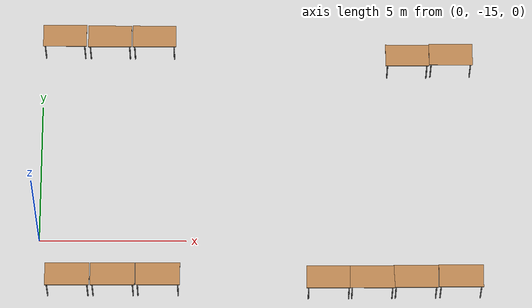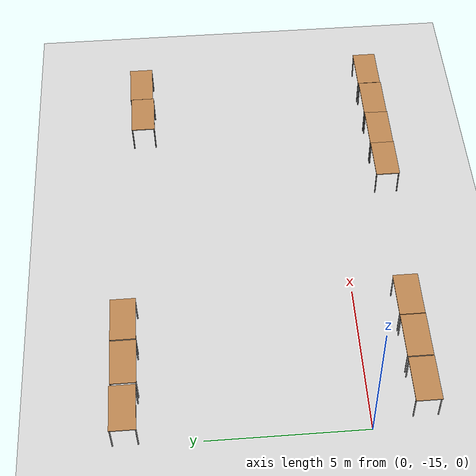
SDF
<sdf version="1.6">
 <world name="default">
  <model name="ground_plane">
   <static>1</static>
   <link name="link">
    <collision name="collision">
     <geometry><plane><normal>0 0 1</normal><size>100 100</size></plane></geometry>
     <surface><friction><ode><mu>100</mu><mu2>50</mu2></ode></friction></surface>
    </collision>
    <visual name="visual">
     <cast_shadows>0</cast_shadows>
     <geometry><plane><normal>0 0 1</normal><size>100 100</size></plane></geometry>
     <material>
      <script><uri>file://media/materials/scripts/gazebo.material</uri><name>Gazebo/Grey</name></script>
     </material>
    </visual>
   </link>
  </model>
  <model name="table">
   <static>1</static>
   <link name="link">
    <collision name="surface">
     <pose>0 0 1 0 -0 0</pose>
     <geometry><box><size>1.5 0.8 0.03</size></box></geometry>
     <surface><friction><ode><mu>0.6</mu><mu2>0.6</mu2></ode></friction></surface>
    </collision>
    <visual name="visual1">
     <pose>0 0 1 0 -0 0</pose>
     <geometry><box><size>1.5 0.8 0.03</size></box></geometry>
     <material>
      <script><uri>file://media/materials/scripts/gazebo.material</uri><name>Gazebo/Wood</name></script>
     </material>
    </visual>
    <collision name="front_left_leg">
     <pose>0.68 0.38 0.5 0 -0 0</pose>
     <geometry><cylinder><radius>0.02</radius><length>1</length></cylinder></geometry>
    </collision>
    <visual name="front_left_leg">
     <pose>0.68 0.38 0.5 0 -0 0</pose>
     <geometry><cylinder><radius>0.02</radius><length>1</length></cylinder></geometry>
     <material>
      <script><uri>file://media/materials/scripts/gazebo.material</uri><name>Gazebo/Grey</name></script>
     </material>
    </visual>
    <collision name="front_right_leg">
     <pose>0.68 -0.38 0.5 0 -0 0</pose>
     <geometry><cylinder><radius>0.02</radius><length>1</length></cylinder></geometry>
    </collision>
    <visual name="front_right_leg">
     <pose>0.68 -0.38 0.5 0 -0 0</pose>
     <geometry><cylinder><radius>0.02</radius><length>1</length></cylinder></geometry>
     <material>
      <script><uri>file://media/materials/scripts/gazebo.material</uri><name>Gazebo/Grey</name></script>
     </material>
    </visual>
    <collision name="back_right_leg">
     <pose>-0.68 -0.38 0.5 0 -0 0</pose>
     <geometry><cylinder><radius>0.02</radius><length>1</length></cylinder></geometry>
    </collision>
    <visual name="back_right_leg">
     <pose>-0.68 -0.38 0.5 0 -0 0</pose>
     <geometry><cylinder><radius>0.02</radius><length>1</length></cylinder></geometry>
     <material>
      <script><uri>file://media/materials/scripts/gazebo.material</uri><name>Gazebo/Grey</name></script>
     </material>
    </visual>
    <collision name="back_left_leg">
     <pose>-0.68 0.38 0.5 0 -0 0</pose>
     <geometry><cylinder><radius>0.02</radius><length>1</length></cylinder></geometry>
    </collision>
    <visual name="back_left_leg">
     <pose>-0.68 0.38 0.5 0 -0 0</pose>
     <geometry><cylinder><radius>0.02</radius><length>1</length></cylinder></geometry>
     <material>
      <script><uri>file://media/materials/scripts/gazebo.material</uri><name>Gazebo/Grey</name></script>
     </material>
    </visual>
   </link>
   <pose>14.0819 -8.38922 0 0 -0 0</pose>
  </model>
  <model name="table_clone">
   <static>1</static>
   <link name="link">
    <collision name="surface">
     <pose>0 0 1 0 -0 0</pose>
     <geometry><box><size>1.5 0.8 0.03</size></box></geometry>
     <surface><friction><ode><mu>0.6</mu><mu2>0.6</mu2></ode></friction></surface>
    </collision>
    <visual name="visual1">
     <pose>0 0 1 0 -0 0</pose>
     <geometry><box><size>1.5 0.8 0.03</size></box></geometry>
     <material>
      <script><uri>file://media/materials/scripts/gazebo.material</uri><name>Gazebo/Wood</name></script>
     </material>
    </visual>
    <collision name="front_left_leg">
     <pose>0.68 0.38 0.5 0 -0 0</pose>
     <geometry><cylinder><radius>0.02</radius><length>1</length></cylinder></geometry>
    </collision>
    <visual name="front_left_leg">
     <pose>0.68 0.38 0.5 0 -0 0</pose>
     <geometry><cylinder><radius>0.02</radius><length>1</length></cylinder></geometry>
     <material>
      <script><uri>file://media/materials/scripts/gazebo.material</uri><name>Gazebo/Grey</name></script>
     </material>
    </visual>
    <collision name="front_right_leg">
     <pose>0.68 -0.38 0.5 0 -0 0</pose>
     <geometry><cylinder><radius>0.02</radius><length>1</length></cylinder></geometry>
    </collision>
    <visual name="front_right_leg">
     <pose>0.68 -0.38 0.5 0 -0 0</pose>
     <geometry><cylinder><radius>0.02</radius><length>1</length></cylinder></geometry>
     <material>
      <script><uri>file://media/materials/scripts/gazebo.material</uri><name>Gazebo/Grey</name></script>
     </material>
    </visual>
    <collision name="back_right_leg">
     <pose>-0.68 -0.38 0.5 0 -0 0</pose>
     <geometry><cylinder><radius>0.02</radius><length>1</length></cylinder></geometry>
    </collision>
    <visual name="back_right_leg">
     <pose>-0.68 -0.38 0.5 0 -0 0</pose>
     <geometry><cylinder><radius>0.02</radius><length>1</length></cylinder></geometry>
     <material>
      <script><uri>file://media/materials/scripts/gazebo.material</uri><name>Gazebo/Grey</name></script>
     </material>
    </visual>
    <collision name="back_left_leg">
     <pose>-0.68 0.38 0.5 0 -0 0</pose>
     <geometry><cylinder><radius>0.02</radius><length>1</length></cylinder></geometry>
    </collision>
    <visual name="back_left_leg">
     <pose>-0.68 0.38 0.5 0 -0 0</pose>
     <geometry><cylinder><radius>0.02</radius><length>1</length></cylinder></geometry>
     <material>
      <script><uri>file://media/materials/scripts/gazebo.material</uri><name>Gazebo/Grey</name></script>
     </material>
    </visual>
   </link>
   <pose>12.5791 -8.42531 0 0 -0 0</pose>
  </model>
  <model name="table_clone_0">
   <static>1</static>
   <link name="link">
    <collision name="surface">
     <pose>0 0 1 0 -0 0</pose>
     <geometry><box><size>1.5 0.8 0.03</size></box></geometry>
     <surface><friction><ode><mu>0.6</mu><mu2>0.6</mu2></ode></friction></surface>
    </collision>
    <visual name="visual1">
     <pose>0 0 1 0 -0 0</pose>
     <geometry><box><size>1.5 0.8 0.03</size></box></geometry>
     <material>
      <script><uri>file://media/materials/scripts/gazebo.material</uri><name>Gazebo/Wood</name></script>
     </material>
    </visual>
    <collision name="front_left_leg">
     <pose>0.68 0.38 0.5 0 -0 0</pose>
     <geometry><cylinder><radius>0.02</radius><length>1</length></cylinder></geometry>
    </collision>
    <visual name="front_left_leg">
     <pose>0.68 0.38 0.5 0 -0 0</pose>
     <geometry><cylinder><radius>0.02</radius><length>1</length></cylinder></geometry>
     <material>
      <script><uri>file://media/materials/scripts/gazebo.material</uri><name>Gazebo/Grey</name></script>
     </material>
    </visual>
    <collision name="front_right_leg">
     <pose>0.68 -0.38 0.5 0 -0 0</pose>
     <geometry><cylinder><radius>0.02</radius><length>1</length></cylinder></geometry>
    </collision>
    <visual name="front_right_leg">
     <pose>0.68 -0.38 0.5 0 -0 0</pose>
     <geometry><cylinder><radius>0.02</radius><length>1</length></cylinder></geometry>
     <material>
      <script><uri>file://media/materials/scripts/gazebo.material</uri><name>Gazebo/Grey</name></script>
     </material>
    </visual>
    <collision name="back_right_leg">
     <pose>-0.68 -0.38 0.5 0 -0 0</pose>
     <geometry><cylinder><radius>0.02</radius><length>1</length></cylinder></geometry>
    </collision>
    <visual name="back_right_leg">
     <pose>-0.68 -0.38 0.5 0 -0 0</pose>
     <geometry><cylinder><radius>0.02</radius><length>1</length></cylinder></geometry>
     <material>
      <script><uri>file://media/materials/scripts/gazebo.material</uri><name>Gazebo/Grey</name></script>
     </material>
    </visual>
    <collision name="back_left_leg">
     <pose>-0.68 0.38 0.5 0 -0 0</pose>
     <geometry><cylinder><radius>0.02</radius><length>1</length></cylinder></geometry>
    </collision>
    <visual name="back_left_leg">
     <pose>-0.68 0.38 0.5 0 -0 0</pose>
     <geometry><cylinder><radius>0.02</radius><length>1</length></cylinder></geometry>
     <material>
      <script><uri>file://media/materials/scripts/gazebo.material</uri><name>Gazebo/Grey</name></script>
     </material>
    </visual>
   </link>
   <pose>14.2864 -16.6612 0 0 -0 0</pose>
  </model>
  <model name="table_clone_1">
   <static>1</static>
   <link name="link">
    <collision name="surface">
     <pose>0 0 1 0 -0 0</pose>
     <geometry><box><size>1.5 0.8 0.03</size></box></geometry>
     <surface><friction><ode><mu>0.6</mu><mu2>0.6</mu2></ode></friction></surface>
    </collision>
    <visual name="visual1">
     <pose>0 0 1 0 -0 0</pose>
     <geometry><box><size>1.5 0.8 0.03</size></box></geometry>
     <material>
      <script><uri>file://media/materials/scripts/gazebo.material</uri><name>Gazebo/Wood</name></script>
     </material>
    </visual>
    <collision name="front_left_leg">
     <pose>0.68 0.38 0.5 0 -0 0</pose>
     <geometry><cylinder><radius>0.02</radius><length>1</length></cylinder></geometry>
    </collision>
    <visual name="front_left_leg">
     <pose>0.68 0.38 0.5 0 -0 0</pose>
     <geometry><cylinder><radius>0.02</radius><length>1</length></cylinder></geometry>
     <material>
      <script><uri>file://media/materials/scripts/gazebo.material</uri><name>Gazebo/Grey</name></script>
     </material>
    </visual>
    <collision name="front_right_leg">
     <pose>0.68 -0.38 0.5 0 -0 0</pose>
     <geometry><cylinder><radius>0.02</radius><length>1</length></cylinder></geometry>
    </collision>
    <visual name="front_right_leg">
     <pose>0.68 -0.38 0.5 0 -0 0</pose>
     <geometry><cylinder><radius>0.02</radius><length>1</length></cylinder></geometry>
     <material>
      <script><uri>file://media/materials/scripts/gazebo.material</uri><name>Gazebo/Grey</name></script>
     </material>
    </visual>
    <collision name="back_right_leg">
     <pose>-0.68 -0.38 0.5 0 -0 0</pose>
     <geometry><cylinder><radius>0.02</radius><length>1</length></cylinder></geometry>
    </collision>
    <visual name="back_right_leg">
     <pose>-0.68 -0.38 0.5 0 -0 0</pose>
     <geometry><cylinder><radius>0.02</radius><length>1</length></cylinder></geometry>
     <material>
      <script><uri>file://media/materials/scripts/gazebo.material</uri><name>Gazebo/Grey</name></script>
     </material>
    </visual>
    <collision name="back_left_leg">
     <pose>-0.68 0.38 0.5 0 -0 0</pose>
     <geometry><cylinder><radius>0.02</radius><length>1</length></cylinder></geometry>
    </collision>
    <visual name="back_left_leg">
     <pose>-0.68 0.38 0.5 0 -0 0</pose>
     <geometry><cylinder><radius>0.02</radius><length>1</length></cylinder></geometry>
     <material>
      <script><uri>file://media/materials/scripts/gazebo.material</uri><name>Gazebo/Grey</name></script>
     </material>
    </visual>
   </link>
   <pose>12.7739 -16.685 0 0 -0 0</pose>
  </model>
  <model name="table_clone_2">
   <static>1</static>
   <link name="link">
    <collision name="surface">
     <pose>0 0 1 0 -0 0</pose>
     <geometry><box><size>1.5 0.8 0.03</size></box></geometry>
     <surface><friction><ode><mu>0.6</mu><mu2>0.6</mu2></ode></friction></surface>
    </collision>
    <visual name="visual1">
     <pose>0 0 1 0 -0 0</pose>
     <geometry><box><size>1.5 0.8 0.03</size></box></geometry>
     <material>
      <script><uri>file://media/materials/scripts/gazebo.material</uri><name>Gazebo/Wood</name></script>
     </material>
    </visual>
    <collision name="front_left_leg">
     <pose>0.68 0.38 0.5 0 -0 0</pose>
     <geometry><cylinder><radius>0.02</radius><length>1</length></cylinder></geometry>
    </collision>
    <visual name="front_left_leg">
     <pose>0.68 0.38 0.5 0 -0 0</pose>
     <geometry><cylinder><radius>0.02</radius><length>1</length></cylinder></geometry>
     <material>
      <script><uri>file://media/materials/scripts/gazebo.material</uri><name>Gazebo/Grey</name></script>
     </material>
    </visual>
    <collision name="front_right_leg">
     <pose>0.68 -0.38 0.5 0 -0 0</pose>
     <geometry><cylinder><radius>0.02</radius><length>1</length></cylinder></geometry>
    </collision>
    <visual name="front_right_leg">
     <pose>0.68 -0.38 0.5 0 -0 0</pose>
     <geometry><cylinder><radius>0.02</radius><length>1</length></cylinder></geometry>
     <material>
      <script><uri>file://media/materials/scripts/gazebo.material</uri><name>Gazebo/Grey</name></script>
     </material>
    </visual>
    <collision name="back_right_leg">
     <pose>-0.68 -0.38 0.5 0 -0 0</pose>
     <geometry><cylinder><radius>0.02</radius><length>1</length></cylinder></geometry>
    </collision>
    <visual name="back_right_leg">
     <pose>-0.68 -0.38 0.5 0 -0 0</pose>
     <geometry><cylinder><radius>0.02</radius><length>1</length></cylinder></geometry>
     <material>
      <script><uri>file://media/materials/scripts/gazebo.material</uri><name>Gazebo/Grey</name></script>
     </material>
    </visual>
    <collision name="back_left_leg">
     <pose>-0.68 0.38 0.5 0 -0 0</pose>
     <geometry><cylinder><radius>0.02</radius><length>1</length></cylinder></geometry>
    </collision>
    <visual name="back_left_leg">
     <pose>-0.68 0.38 0.5 0 -0 0</pose>
     <geometry><cylinder><radius>0.02</radius><length>1</length></cylinder></geometry>
     <material>
      <script><uri>file://media/materials/scripts/gazebo.material</uri><name>Gazebo/Grey</name></script>
     </material>
    </visual>
   </link>
   <pose>11.2999 -16.7016 0 0 -0 0</pose>
  </model>
  <model name="table_clone_3">
   <static>1</static>
   <link name="link">
    <collision name="surface">
     <pose>0 0 1 0 -0 0</pose>
     <geometry><box><size>1.5 0.8 0.03</size></box></geometry>
     <surface><friction><ode><mu>0.6</mu><mu2>0.6</mu2></ode></friction></surface>
    </collision>
    <visual name="visual1">
     <pose>0 0 1 0 -0 0</pose>
     <geometry><box><size>1.5 0.8 0.03</size></box></geometry>
     <material>
      <script><uri>file://media/materials/scripts/gazebo.material</uri><name>Gazebo/Wood</name></script>
     </material>
    </visual>
    <collision name="front_left_leg">
     <pose>0.68 0.38 0.5 0 -0 0</pose>
     <geometry><cylinder><radius>0.02</radius><length>1</length></cylinder></geometry>
    </collision>
    <visual name="front_left_leg">
     <pose>0.68 0.38 0.5 0 -0 0</pose>
     <geometry><cylinder><radius>0.02</radius><length>1</length></cylinder></geometry>
     <material>
      <script><uri>file://media/materials/scripts/gazebo.material</uri><name>Gazebo/Grey</name></script>
     </material>
    </visual>
    <collision name="front_right_leg">
     <pose>0.68 -0.38 0.5 0 -0 0</pose>
     <geometry><cylinder><radius>0.02</radius><length>1</length></cylinder></geometry>
    </collision>
    <visual name="front_right_leg">
     <pose>0.68 -0.38 0.5 0 -0 0</pose>
     <geometry><cylinder><radius>0.02</radius><length>1</length></cylinder></geometry>
     <material>
      <script><uri>file://media/materials/scripts/gazebo.material</uri><name>Gazebo/Grey</name></script>
     </material>
    </visual>
    <collision name="back_right_leg">
     <pose>-0.68 -0.38 0.5 0 -0 0</pose>
     <geometry><cylinder><radius>0.02</radius><length>1</length></cylinder></geometry>
    </collision>
    <visual name="back_right_leg">
     <pose>-0.68 -0.38 0.5 0 -0 0</pose>
     <geometry><cylinder><radius>0.02</radius><length>1</length></cylinder></geometry>
     <material>
      <script><uri>file://media/materials/scripts/gazebo.material</uri><name>Gazebo/Grey</name></script>
     </material>
    </visual>
    <collision name="back_left_leg">
     <pose>-0.68 0.38 0.5 0 -0 0</pose>
     <geometry><cylinder><radius>0.02</radius><length>1</length></cylinder></geometry>
    </collision>
    <visual name="back_left_leg">
     <pose>-0.68 0.38 0.5 0 -0 0</pose>
     <geometry><cylinder><radius>0.02</radius><length>1</length></cylinder></geometry>
     <material>
      <script><uri>file://media/materials/scripts/gazebo.material</uri><name>Gazebo/Grey</name></script>
     </material>
    </visual>
   </link>
   <pose>9.83498 -16.7133 0 0 -0 0</pose>
  </model>
  <model name="table_clone_4">
   <static>1</static>
   <link name="link">
    <collision name="surface">
     <pose>0 0 1 0 -0 0</pose>
     <geometry><box><size>1.5 0.8 0.03</size></box></geometry>
     <surface><friction><ode><mu>0.6</mu><mu2>0.6</mu2></ode></friction></surface>
    </collision>
    <visual name="visual1">
     <pose>0 0 1 0 -0 0</pose>
     <geometry><box><size>1.5 0.8 0.03</size></box></geometry>
     <material>
      <script><uri>file://media/materials/scripts/gazebo.material</uri><name>Gazebo/Wood</name></script>
     </material>
    </visual>
    <collision name="front_left_leg">
     <pose>0.68 0.38 0.5 0 -0 0</pose>
     <geometry><cylinder><radius>0.02</radius><length>1</length></cylinder></geometry>
    </collision>
    <visual name="front_left_leg">
     <pose>0.68 0.38 0.5 0 -0 0</pose>
     <geometry><cylinder><radius>0.02</radius><length>1</length></cylinder></geometry>
     <material>
      <script><uri>file://media/materials/scripts/gazebo.material</uri><name>Gazebo/Grey</name></script>
     </material>
    </visual>
    <collision name="front_right_leg">
     <pose>0.68 -0.38 0.5 0 -0 0</pose>
     <geometry><cylinder><radius>0.02</radius><length>1</length></cylinder></geometry>
    </collision>
    <visual name="front_right_leg">
     <pose>0.68 -0.38 0.5 0 -0 0</pose>
     <geometry><cylinder><radius>0.02</radius><length>1</length></cylinder></geometry>
     <material>
      <script><uri>file://media/materials/scripts/gazebo.material</uri><name>Gazebo/Grey</name></script>
     </material>
    </visual>
    <collision name="back_right_leg">
     <pose>-0.68 -0.38 0.5 0 -0 0</pose>
     <geometry><cylinder><radius>0.02</radius><length>1</length></cylinder></geometry>
    </collision>
    <visual name="back_right_leg">
     <pose>-0.68 -0.38 0.5 0 -0 0</pose>
     <geometry><cylinder><radius>0.02</radius><length>1</length></cylinder></geometry>
     <material>
      <script><uri>file://media/materials/scripts/gazebo.material</uri><name>Gazebo/Grey</name></script>
     </material>
    </visual>
    <collision name="back_left_leg">
     <pose>-0.68 0.38 0.5 0 -0 0</pose>
     <geometry><cylinder><radius>0.02</radius><length>1</length></cylinder></geometry>
    </collision>
    <visual name="back_left_leg">
     <pose>-0.68 0.38 0.5 0 -0 0</pose>
     <geometry><cylinder><radius>0.02</radius><length>1</length></cylinder></geometry>
     <material>
      <script><uri>file://media/materials/scripts/gazebo.material</uri><name>Gazebo/Grey</name></script>
     </material>
    </visual>
   </link>
   <pose>4.07121 -16.6152 0 0 -0 0</pose>
  </model>
  <model name="table_clone_5">
   <static>1</static>
   <link name="link">
    <collision name="surface">
     <pose>0 0 1 0 -0 0</pose>
     <geometry><box><size>1.5 0.8 0.03</size></box></geometry>
     <surface><friction><ode><mu>0.6</mu><mu2>0.6</mu2></ode></friction></surface>
    </collision>
    <visual name="visual1">
     <pose>0 0 1 0 -0 0</pose>
     <geometry><box><size>1.5 0.8 0.03</size></box></geometry>
     <material>
      <script><uri>file://media/materials/scripts/gazebo.material</uri><name>Gazebo/Wood</name></script>
     </material>
    </visual>
    <collision name="front_left_leg">
     <pose>0.68 0.38 0.5 0 -0 0</pose>
     <geometry><cylinder><radius>0.02</radius><length>1</length></cylinder></geometry>
    </collision>
    <visual name="front_left_leg">
     <pose>0.68 0.38 0.5 0 -0 0</pose>
     <geometry><cylinder><radius>0.02</radius><length>1</length></cylinder></geometry>
     <material>
      <script><uri>file://media/materials/scripts/gazebo.material</uri><name>Gazebo/Grey</name></script>
     </material>
    </visual>
    <collision name="front_right_leg">
     <pose>0.68 -0.38 0.5 0 -0 0</pose>
     <geometry><cylinder><radius>0.02</radius><length>1</length></cylinder></geometry>
    </collision>
    <visual name="front_right_leg">
     <pose>0.68 -0.38 0.5 0 -0 0</pose>
     <geometry><cylinder><radius>0.02</radius><length>1</length></cylinder></geometry>
     <material>
      <script><uri>file://media/materials/scripts/gazebo.material</uri><name>Gazebo/Grey</name></script>
     </material>
    </visual>
    <collision name="back_right_leg">
     <pose>-0.68 -0.38 0.5 0 -0 0</pose>
     <geometry><cylinder><radius>0.02</radius><length>1</length></cylinder></geometry>
    </collision>
    <visual name="back_right_leg">
     <pose>-0.68 -0.38 0.5 0 -0 0</pose>
     <geometry><cylinder><radius>0.02</radius><length>1</length></cylinder></geometry>
     <material>
      <script><uri>file://media/materials/scripts/gazebo.material</uri><name>Gazebo/Grey</name></script>
     </material>
    </visual>
    <collision name="back_left_leg">
     <pose>-0.68 0.38 0.5 0 -0 0</pose>
     <geometry><cylinder><radius>0.02</radius><length>1</length></cylinder></geometry>
    </collision>
    <visual name="back_left_leg">
     <pose>-0.68 0.38 0.5 0 -0 0</pose>
     <geometry><cylinder><radius>0.02</radius><length>1</length></cylinder></geometry>
     <material>
      <script><uri>file://media/materials/scripts/gazebo.material</uri><name>Gazebo/Grey</name></script>
     </material>
    </visual>
   </link>
   <pose>2.55084 -16.6222 0 0 -0 0</pose>
  </model>
  <model name="table_clone_6">
   <static>1</static>
   <link name="link">
    <collision name="surface">
     <pose>0 0 1 0 -0 0</pose>
     <geometry><box><size>1.5 0.8 0.03</size></box></geometry>
     <surface><friction><ode><mu>0.6</mu><mu2>0.6</mu2></ode></friction></surface>
    </collision>
    <visual name="visual1">
     <pose>0 0 1 0 -0 0</pose>
     <geometry><box><size>1.5 0.8 0.03</size></box></geometry>
     <material>
      <script><uri>file://media/materials/scripts/gazebo.material</uri><name>Gazebo/Wood</name></script>
     </material>
    </visual>
    <collision name="front_left_leg">
     <pose>0.68 0.38 0.5 0 -0 0</pose>
     <geometry><cylinder><radius>0.02</radius><length>1</length></cylinder></geometry>
    </collision>
    <visual name="front_left_leg">
     <pose>0.68 0.38 0.5 0 -0 0</pose>
     <geometry><cylinder><radius>0.02</radius><length>1</length></cylinder></geometry>
     <material>
      <script><uri>file://media/materials/scripts/gazebo.material</uri><name>Gazebo/Grey</name></script>
     </material>
    </visual>
    <collision name="front_right_leg">
     <pose>0.68 -0.38 0.5 0 -0 0</pose>
     <geometry><cylinder><radius>0.02</radius><length>1</length></cylinder></geometry>
    </collision>
    <visual name="front_right_leg">
     <pose>0.68 -0.38 0.5 0 -0 0</pose>
     <geometry><cylinder><radius>0.02</radius><length>1</length></cylinder></geometry>
     <material>
      <script><uri>file://media/materials/scripts/gazebo.material</uri><name>Gazebo/Grey</name></script>
     </material>
    </visual>
    <collision name="back_right_leg">
     <pose>-0.68 -0.38 0.5 0 -0 0</pose>
     <geometry><cylinder><radius>0.02</radius><length>1</length></cylinder></geometry>
    </collision>
    <visual name="back_right_leg">
     <pose>-0.68 -0.38 0.5 0 -0 0</pose>
     <geometry><cylinder><radius>0.02</radius><length>1</length></cylinder></geometry>
     <material>
      <script><uri>file://media/materials/scripts/gazebo.material</uri><name>Gazebo/Grey</name></script>
     </material>
    </visual>
    <collision name="back_left_leg">
     <pose>-0.68 0.38 0.5 0 -0 0</pose>
     <geometry><cylinder><radius>0.02</radius><length>1</length></cylinder></geometry>
    </collision>
    <visual name="back_left_leg">
     <pose>-0.68 0.38 0.5 0 -0 0</pose>
     <geometry><cylinder><radius>0.02</radius><length>1</length></cylinder></geometry>
     <material>
      <script><uri>file://media/materials/scripts/gazebo.material</uri><name>Gazebo/Grey</name></script>
     </material>
    </visual>
   </link>
   <pose>1.01882 -16.6291 0 0 -0 0</pose>
  </model>
  <model name="table_clone_7">
   <static>1</static>
   <link name="link">
    <collision name="surface">
     <pose>0 0 1 0 -0 0</pose>
     <geometry><box><size>1.5 0.8 0.03</size></box></geometry>
     <surface><friction><ode><mu>0.6</mu><mu2>0.6</mu2></ode></friction></surface>
    </collision>
    <visual name="visual1">
     <pose>0 0 1 0 -0 0</pose>
     <geometry><box><size>1.5 0.8 0.03</size></box></geometry>
     <material>
      <script><uri>file://media/materials/scripts/gazebo.material</uri><name>Gazebo/Wood</name></script>
     </material>
    </visual>
    <collision name="front_left_leg">
     <pose>0.68 0.38 0.5 0 -0 0</pose>
     <geometry><cylinder><radius>0.02</radius><length>1</length></cylinder></geometry>
    </collision>
    <visual name="front_left_leg">
     <pose>0.68 0.38 0.5 0 -0 0</pose>
     <geometry><cylinder><radius>0.02</radius><length>1</length></cylinder></geometry>
     <material>
      <script><uri>file://media/materials/scripts/gazebo.material</uri><name>Gazebo/Grey</name></script>
     </material>
    </visual>
    <collision name="front_right_leg">
     <pose>0.68 -0.38 0.5 0 -0 0</pose>
     <geometry><cylinder><radius>0.02</radius><length>1</length></cylinder></geometry>
    </collision>
    <visual name="front_right_leg">
     <pose>0.68 -0.38 0.5 0 -0 0</pose>
     <geometry><cylinder><radius>0.02</radius><length>1</length></cylinder></geometry>
     <material>
      <script><uri>file://media/materials/scripts/gazebo.material</uri><name>Gazebo/Grey</name></script>
     </material>
    </visual>
    <collision name="back_right_leg">
     <pose>-0.68 -0.38 0.5 0 -0 0</pose>
     <geometry><cylinder><radius>0.02</radius><length>1</length></cylinder></geometry>
    </collision>
    <visual name="back_right_leg">
     <pose>-0.68 -0.38 0.5 0 -0 0</pose>
     <geometry><cylinder><radius>0.02</radius><length>1</length></cylinder></geometry>
     <material>
      <script><uri>file://media/materials/scripts/gazebo.material</uri><name>Gazebo/Grey</name></script>
     </material>
    </visual>
    <collision name="back_left_leg">
     <pose>-0.68 0.38 0.5 0 -0 0</pose>
     <geometry><cylinder><radius>0.02</radius><length>1</length></cylinder></geometry>
    </collision>
    <visual name="back_left_leg">
     <pose>-0.68 0.38 0.5 0 -0 0</pose>
     <geometry><cylinder><radius>0.02</radius><length>1</length></cylinder></geometry>
     <material>
      <script><uri>file://media/materials/scripts/gazebo.material</uri><name>Gazebo/Grey</name></script>
     </material>
    </visual>
   </link>
   <pose>3.83492 -7.71608 0 0 -0 0</pose>
  </model>
  <model name="table_clone_8">
   <static>1</static>
   <link name="link">
    <collision name="surface">
     <pose>0 0 1 0 -0 0</pose>
     <geometry><box><size>1.5 0.8 0.03</size></box></geometry>
     <surface><friction><ode><mu>0.6</mu><mu2>0.6</mu2></ode></friction></surface>
    </collision>
    <visual name="visual1">
     <pose>0 0 1 0 -0 0</pose>
     <geometry><box><size>1.5 0.8 0.03</size></box></geometry>
     <material>
      <script><uri>file://media/materials/scripts/gazebo.material</uri><name>Gazebo/Wood</name></script>
     </material>
    </visual>
    <collision name="front_left_leg">
     <pose>0.68 0.38 0.5 0 -0 0</pose>
     <geometry><cylinder><radius>0.02</radius><length>1</length></cylinder></geometry>
    </collision>
    <visual name="front_left_leg">
     <pose>0.68 0.38 0.5 0 -0 0</pose>
     <geometry><cylinder><radius>0.02</radius><length>1</length></cylinder></geometry>
     <material>
      <script><uri>file://media/materials/scripts/gazebo.material</uri><name>Gazebo/Grey</name></script>
     </material>
    </visual>
    <collision name="front_right_leg">
     <pose>0.68 -0.38 0.5 0 -0 0</pose>
     <geometry><cylinder><radius>0.02</radius><length>1</length></cylinder></geometry>
    </collision>
    <visual name="front_right_leg">
     <pose>0.68 -0.38 0.5 0 -0 0</pose>
     <geometry><cylinder><radius>0.02</radius><length>1</length></cylinder></geometry>
     <material>
      <script><uri>file://media/materials/scripts/gazebo.material</uri><name>Gazebo/Grey</name></script>
     </material>
    </visual>
    <collision name="back_right_leg">
     <pose>-0.68 -0.38 0.5 0 -0 0</pose>
     <geometry><cylinder><radius>0.02</radius><length>1</length></cylinder></geometry>
    </collision>
    <visual name="back_right_leg">
     <pose>-0.68 -0.38 0.5 0 -0 0</pose>
     <geometry><cylinder><radius>0.02</radius><length>1</length></cylinder></geometry>
     <material>
      <script><uri>file://media/materials/scripts/gazebo.material</uri><name>Gazebo/Grey</name></script>
     </material>
    </visual>
    <collision name="back_left_leg">
     <pose>-0.68 0.38 0.5 0 -0 0</pose>
     <geometry><cylinder><radius>0.02</radius><length>1</length></cylinder></geometry>
    </collision>
    <visual name="back_left_leg">
     <pose>-0.68 0.38 0.5 0 -0 0</pose>
     <geometry><cylinder><radius>0.02</radius><length>1</length></cylinder></geometry>
     <material>
      <script><uri>file://media/materials/scripts/gazebo.material</uri><name>Gazebo/Grey</name></script>
     </material>
    </visual>
   </link>
   <pose>2.2992 -7.71859 0 0 -0 0</pose>
  </model>
  <model name="table_clone_9">
   <static>1</static>
   <link name="link">
    <collision name="surface">
     <pose>0 0 1 0 -0 0</pose>
     <geometry><box><size>1.5 0.8 0.03</size></box></geometry>
     <surface><friction><ode><mu>0.6</mu><mu2>0.6</mu2></ode></friction></surface>
    </collision>
    <visual name="visual1">
     <pose>0 0 1 0 -0 0</pose>
     <geometry><box><size>1.5 0.8 0.03</size></box></geometry>
     <material>
      <script><uri>file://media/materials/scripts/gazebo.material</uri><name>Gazebo/Wood</name></script>
     </material>
    </visual>
    <collision name="front_left_leg">
     <pose>0.68 0.38 0.5 0 -0 0</pose>
     <geometry><cylinder><radius>0.02</radius><length>1</length></cylinder></geometry>
    </collision>
    <visual name="front_left_leg">
     <pose>0.68 0.38 0.5 0 -0 0</pose>
     <geometry><cylinder><radius>0.02</radius><length>1</length></cylinder></geometry>
     <material>
      <script><uri>file://media/materials/scripts/gazebo.material</uri><name>Gazebo/Grey</name></script>
     </material>
    </visual>
    <collision name="front_right_leg">
     <pose>0.68 -0.38 0.5 0 -0 0</pose>
     <geometry><cylinder><radius>0.02</radius><length>1</length></cylinder></geometry>
    </collision>
    <visual name="front_right_leg">
     <pose>0.68 -0.38 0.5 0 -0 0</pose>
     <geometry><cylinder><radius>0.02</radius><length>1</length></cylinder></geometry>
     <material>
      <script><uri>file://media/materials/scripts/gazebo.material</uri><name>Gazebo/Grey</name></script>
     </material>
    </visual>
    <collision name="back_right_leg">
     <pose>-0.68 -0.38 0.5 0 -0 0</pose>
     <geometry><cylinder><radius>0.02</radius><length>1</length></cylinder></geometry>
    </collision>
    <visual name="back_right_leg">
     <pose>-0.68 -0.38 0.5 0 -0 0</pose>
     <geometry><cylinder><radius>0.02</radius><length>1</length></cylinder></geometry>
     <material>
      <script><uri>file://media/materials/scripts/gazebo.material</uri><name>Gazebo/Grey</name></script>
     </material>
    </visual>
    <collision name="back_left_leg">
     <pose>-0.68 0.38 0.5 0 -0 0</pose>
     <geometry><cylinder><radius>0.02</radius><length>1</length></cylinder></geometry>
    </collision>
    <visual name="back_left_leg">
     <pose>-0.68 0.38 0.5 0 -0 0</pose>
     <geometry><cylinder><radius>0.02</radius><length>1</length></cylinder></geometry>
     <material>
      <script><uri>file://media/materials/scripts/gazebo.material</uri><name>Gazebo/Grey</name></script>
     </material>
    </visual>
   </link>
   <pose>0.741181 -7.70094 0 0 -0 0</pose>
  </model>
 </world>
</sdf>
